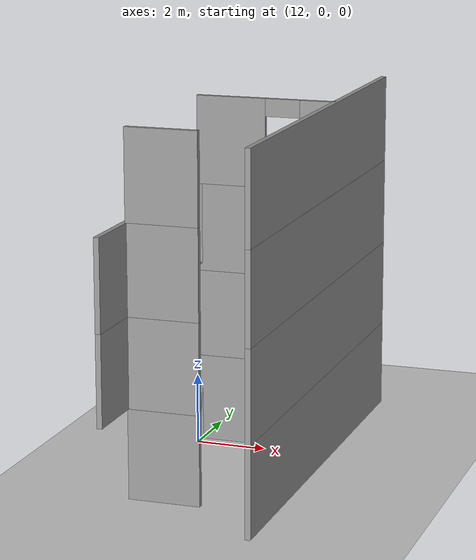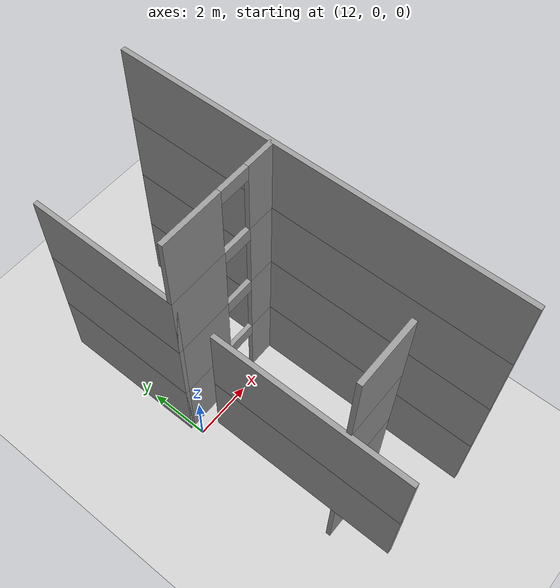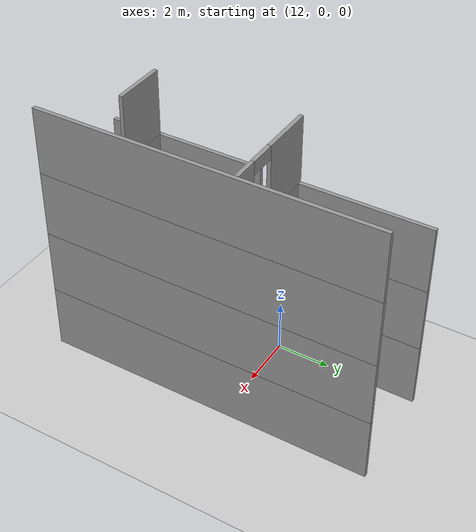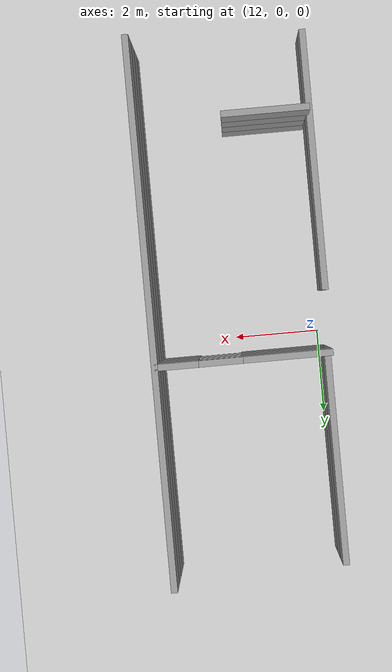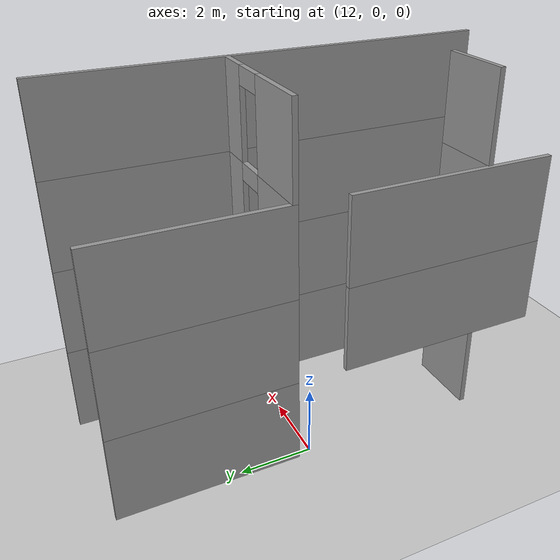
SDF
<sdf version="1.7">
 <world name="default">
  <model name="ground_plane">
   <static>1</static>
   <link name="link">
    <collision name="collision">
     <geometry><plane><normal>0 0 1</normal><size>100 100</size></plane></geometry>
     <surface>
      <contact><collide_bitmask>65535</collide_bitmask></contact>
      <friction><ode><mu>100</mu><mu2>50</mu2></ode></friction>
     </surface>
    </collision>
    <visual name="visual">
     <cast_shadows>0</cast_shadows>
     <geometry><plane><normal>0 0 1</normal><size>100 100</size></plane></geometry>
     <material>
      <script><uri>file://media/materials/scripts/gazebo.material</uri><name>Gazebo/Grey</name></script>
     </material>
    </visual>
   </link>
  </model>
  <model name="floor4plan_transp">
   <link name="Wall_103">
    <pose>15.925 0 7.5 0 -0 1.5708</pose>
    <visual name="Wall_103_Visual">
     <pose>0 0 1.25 0 -0 0</pose>
     <geometry><box><size>12.5 0.15 2.5</size></box></geometry>
     <material>
      <script><uri>file://media/materials/scripts/gazebo.material</uri><name>Gazebo/Grey</name></script>
      <ambient>1 1 1 1</ambient>
      <shader type="pixel"/>
     </material>
     <meta><layer>3</layer></meta>
    </visual>
    <collision name="Wall_103_Collision">
     <pose>0 0 1.25 0 -0 0</pose>
     <geometry><box><size>12.5 0.15 2.5</size></box></geometry>
     <surface>
      <friction>
       <ode><mu>1</mu><mu2>1</mu2><fdir1>0 0 0</fdir1><slip1>0</slip1><slip2>0</slip2></ode>
       <torsional>
        <coefficient>1</coefficient>
        <patch_radius>0</patch_radius>
        <surface_radius>0</surface_radius>
        <use_patch_radius>1</use_patch_radius>
        <ode><slip>0</slip></ode>
       </torsional>
      </friction>
      <bounce><restitution_coefficient>0</restitution_coefficient><threshold>1e+06</threshold></bounce>
      <contact>
       <collide_without_contact>0</collide_without_contact>
       <collide_without_contact_bitmask>1</collide_without_contact_bitmask>
       <collide_bitmask>1</collide_bitmask>
       <ode>
        <soft_cfm>0</soft_cfm>
        <soft_erp>0.2</soft_erp>
        <kp>1e+13</kp>
        <kd>1</kd>
        <max_vel>0.01</max_vel>
        <min_depth>0</min_depth>
       </ode>
       <bullet>
        <split_impulse>1</split_impulse>
        <split_impulse_penetration_threshold>-0.01</split_impulse_penetration_threshold>
        <soft_cfm>0</soft_cfm>
        <soft_erp>0.2</soft_erp>
        <kp>1e+13</kp>
        <kd>1</kd>
       </bullet>
      </contact>
     </surface>
    </collision>
   </link>
   <link name="Wall_106">
    <pose>13.9205 1.21683 7.5 0 -0 0</pose>
    <visual name="Wall_106_Visual_0">
     <pose>-0.992908 0 1.25 0 -0 0</pose>
     <geometry><box><size>2.01418 0.15 2.5</size></box></geometry>
     <material>
      <script><uri>file://media/materials/scripts/gazebo.material</uri><name>Gazebo/Grey</name></script>
      <ambient>1 1 1 1</ambient>
      <shader type="pixel"/>
     </material>
     <meta><layer>3</layer></meta>
    </visual>
    <visual name="Wall_106_Visual_1">
     <pose>1.50709 0 1.25 0 -0 0</pose>
     <geometry><box><size>0.985817 0.15 2.5</size></box></geometry>
     <material>
      <script><uri>file://media/materials/scripts/gazebo.material</uri><name>Gazebo/Grey</name></script>
      <ambient>1 1 1 1</ambient>
      <shader type="pixel"/>
     </material>
     <meta><layer>3</layer></meta>
    </visual>
    <visual name="Wall_106_Visual_2">
     <pose>0.514183 0 2.25 0 -0 0</pose>
     <geometry><box><size>1 0.15 0.5</size></box></geometry>
     <material>
      <script><uri>file://media/materials/scripts/gazebo.material</uri><name>Gazebo/Grey</name></script>
      <ambient>1 1 1 1</ambient>
      <shader type="pixel"/>
     </material>
     <meta><layer>3</layer></meta>
    </visual>
    <collision name="Wall_106_Collision_0">
     <pose>-0.992908 0 1.25 0 -0 0</pose>
     <geometry><box><size>2.01418 0.15 2.5</size></box></geometry>
     <surface>
      <friction>
       <ode><mu>1</mu><mu2>1</mu2><fdir1>0 0 0</fdir1><slip1>0</slip1><slip2>0</slip2></ode>
       <torsional>
        <coefficient>1</coefficient>
        <patch_radius>0</patch_radius>
        <surface_radius>0</surface_radius>
        <use_patch_radius>1</use_patch_radius>
        <ode><slip>0</slip></ode>
       </torsional>
      </friction>
      <bounce><restitution_coefficient>0</restitution_coefficient><threshold>1e+06</threshold></bounce>
      <contact>
       <collide_without_contact>0</collide_without_contact>
       <collide_without_contact_bitmask>1</collide_without_contact_bitmask>
       <collide_bitmask>1</collide_bitmask>
       <ode>
        <soft_cfm>0</soft_cfm>
        <soft_erp>0.2</soft_erp>
        <kp>1e+13</kp>
        <kd>1</kd>
        <max_vel>0.01</max_vel>
        <min_depth>0</min_depth>
       </ode>
       <bullet>
        <split_impulse>1</split_impulse>
        <split_impulse_penetration_threshold>-0.01</split_impulse_penetration_threshold>
        <soft_cfm>0</soft_cfm>
        <soft_erp>0.2</soft_erp>
        <kp>1e+13</kp>
        <kd>1</kd>
       </bullet>
      </contact>
     </surface>
    </collision>
    <collision name="Wall_106_Collision_1">
     <pose>1.50709 0 1.25 0 -0 0</pose>
     <geometry><box><size>0.985817 0.15 2.5</size></box></geometry>
     <surface>
      <friction>
       <ode><mu>1</mu><mu2>1</mu2><fdir1>0 0 0</fdir1><slip1>0</slip1><slip2>0</slip2></ode>
       <torsional>
        <coefficient>1</coefficient>
        <patch_radius>0</patch_radius>
        <surface_radius>0</surface_radius>
        <use_patch_radius>1</use_patch_radius>
        <ode><slip>0</slip></ode>
       </torsional>
      </friction>
      <bounce><restitution_coefficient>0</restitution_coefficient><threshold>1e+06</threshold></bounce>
      <contact>
       <collide_without_contact>0</collide_without_contact>
       <collide_without_contact_bitmask>1</collide_without_contact_bitmask>
       <collide_bitmask>1</collide_bitmask>
       <ode>
        <soft_cfm>0</soft_cfm>
        <soft_erp>0.2</soft_erp>
        <kp>1e+13</kp>
        <kd>1</kd>
        <max_vel>0.01</max_vel>
        <min_depth>0</min_depth>
       </ode>
       <bullet>
        <split_impulse>1</split_impulse>
        <split_impulse_penetration_threshold>-0.01</split_impulse_penetration_threshold>
        <soft_cfm>0</soft_cfm>
        <soft_erp>0.2</soft_erp>
        <kp>1e+13</kp>
        <kd>1</kd>
       </bullet>
      </contact>
     </surface>
    </collision>
    <collision name="Wall_106_Collision_2">
     <pose>0.514183 0 2.25 0 -0 0</pose>
     <geometry><box><size>1 0.15 0.5</size></box></geometry>
     <surface>
      <friction>
       <ode><mu>1</mu><mu2>1</mu2><fdir1>0 0 0</fdir1><slip1>0</slip1><slip2>0</slip2></ode>
       <torsional>
        <coefficient>1</coefficient>
        <patch_radius>0</patch_radius>
        <surface_radius>0</surface_radius>
        <use_patch_radius>1</use_patch_radius>
        <ode><slip>0</slip></ode>
       </torsional>
      </friction>
      <bounce><restitution_coefficient>0</restitution_coefficient><threshold>1e+06</threshold></bounce>
      <contact>
       <collide_without_contact>0</collide_without_contact>
       <collide_without_contact_bitmask>1</collide_without_contact_bitmask>
       <collide_bitmask>1</collide_bitmask>
       <ode>
        <soft_cfm>0</soft_cfm>
        <soft_erp>0.2</soft_erp>
        <kp>1e+13</kp>
        <kd>1</kd>
        <max_vel>0.01</max_vel>
        <min_depth>0</min_depth>
       </ode>
       <bullet>
        <split_impulse>1</split_impulse>
        <split_impulse_penetration_threshold>-0.01</split_impulse_penetration_threshold>
        <soft_cfm>0</soft_cfm>
        <soft_erp>0.2</soft_erp>
        <kp>1e+13</kp>
        <kd>1</kd>
       </bullet>
      </contact>
     </surface>
    </collision>
   </link>
   <link name="Wall_124">
    <pose>12.9541 -4.28826 7.5 0 -0 0</pose>
    <visual name="Wall_124_Visual">
     <pose>0 0 1.25 0 -0 0</pose>
     <geometry><box><size>2 0.15 2.5</size></box></geometry>
     <material>
      <script><uri>file://media/materials/scripts/gazebo.material</uri><name>Gazebo/Grey</name></script>
      <ambient>1 1 1 1</ambient>
      <shader type="pixel"/>
     </material>
     <meta><layer>3</layer></meta>
    </visual>
    <collision name="Wall_124_Collision">
     <pose>0 0 1.25 0 -0 0</pose>
     <geometry><box><size>2 0.15 2.5</size></box></geometry>
     <surface>
      <friction>
       <ode><mu>1</mu><mu2>1</mu2><fdir1>0 0 0</fdir1><slip1>0</slip1><slip2>0</slip2></ode>
       <torsional>
        <coefficient>1</coefficient>
        <patch_radius>0</patch_radius>
        <surface_radius>0</surface_radius>
        <use_patch_radius>1</use_patch_radius>
        <ode><slip>0</slip></ode>
       </torsional>
      </friction>
      <bounce><restitution_coefficient>0</restitution_coefficient><threshold>1e+06</threshold></bounce>
      <contact>
       <collide_without_contact>0</collide_without_contact>
       <collide_without_contact_bitmask>1</collide_without_contact_bitmask>
       <collide_bitmask>1</collide_bitmask>
       <ode>
        <soft_cfm>0</soft_cfm>
        <soft_erp>0.2</soft_erp>
        <kp>1e+13</kp>
        <kd>1</kd>
        <max_vel>0.01</max_vel>
        <min_depth>0</min_depth>
       </ode>
       <bullet>
        <split_impulse>1</split_impulse>
        <split_impulse_penetration_threshold>-0.01</split_impulse_penetration_threshold>
        <soft_cfm>0</soft_cfm>
        <soft_erp>0.2</soft_erp>
        <kp>1e+13</kp>
        <kd>1</kd>
       </bullet>
      </contact>
     </surface>
    </collision>
   </link>
   <link name="Wall_13">
    <pose>13.9205 1.21683 0 0 -0 0</pose>
    <visual name="Wall_13_Visual_0">
     <pose>-0.981344 0 1.25 0 -0 0</pose>
     <geometry><box><size>2.03731 0.15 2.5</size></box></geometry>
     <material>
      <script><uri>file://media/materials/scripts/gazebo.material</uri><name>Gazebo/Grey</name></script>
      <ambient>1 1 1 1</ambient>
      <shader type="pixel"/>
     </material>
     <meta><layer>0</layer></meta>
    </visual>
    <visual name="Wall_13_Visual_1">
     <pose>1.51866 0 1.25 0 -0 0</pose>
     <geometry><box><size>0.962687 0.15 2.5</size></box></geometry>
     <material>
      <script><uri>file://media/materials/scripts/gazebo.material</uri><name>Gazebo/Grey</name></script>
      <ambient>1 1 1 1</ambient>
      <shader type="pixel"/>
     </material>
     <meta><layer>0</layer></meta>
    </visual>
    <visual name="Wall_13_Visual_2">
     <pose>0.537313 0 2.25 0 -0 0</pose>
     <geometry><box><size>1 0.15 0.5</size></box></geometry>
     <material>
      <script><uri>file://media/materials/scripts/gazebo.material</uri><name>Gazebo/Grey</name></script>
      <ambient>1 1 1 1</ambient>
      <shader type="pixel"/>
     </material>
     <meta><layer>0</layer></meta>
    </visual>
    <collision name="Wall_13_Collision_0">
     <pose>-0.981344 0 1.25 0 -0 0</pose>
     <geometry><box><size>2.03731 0.15 2.5</size></box></geometry>
     <surface>
      <friction>
       <ode><mu>1</mu><mu2>1</mu2><fdir1>0 0 0</fdir1><slip1>0</slip1><slip2>0</slip2></ode>
       <torsional>
        <coefficient>1</coefficient>
        <patch_radius>0</patch_radius>
        <surface_radius>0</surface_radius>
        <use_patch_radius>1</use_patch_radius>
        <ode><slip>0</slip></ode>
       </torsional>
      </friction>
      <bounce><restitution_coefficient>0</restitution_coefficient><threshold>1e+06</threshold></bounce>
      <contact>
       <collide_without_contact>0</collide_without_contact>
       <collide_without_contact_bitmask>1</collide_without_contact_bitmask>
       <collide_bitmask>1</collide_bitmask>
       <ode>
        <soft_cfm>0</soft_cfm>
        <soft_erp>0.2</soft_erp>
        <kp>1e+13</kp>
        <kd>1</kd>
        <max_vel>0.01</max_vel>
        <min_depth>0</min_depth>
       </ode>
       <bullet>
        <split_impulse>1</split_impulse>
        <split_impulse_penetration_threshold>-0.01</split_impulse_penetration_threshold>
        <soft_cfm>0</soft_cfm>
        <soft_erp>0.2</soft_erp>
        <kp>1e+13</kp>
        <kd>1</kd>
       </bullet>
      </contact>
     </surface>
    </collision>
    <collision name="Wall_13_Collision_1">
     <pose>1.51866 0 1.25 0 -0 0</pose>
     <geometry><box><size>0.962687 0.15 2.5</size></box></geometry>
     <surface>
      <friction>
       <ode><mu>1</mu><mu2>1</mu2><fdir1>0 0 0</fdir1><slip1>0</slip1><slip2>0</slip2></ode>
       <torsional>
        <coefficient>1</coefficient>
        <patch_radius>0</patch_radius>
        <surface_radius>0</surface_radius>
        <use_patch_radius>1</use_patch_radius>
        <ode><slip>0</slip></ode>
       </torsional>
      </friction>
      <bounce><restitution_coefficient>0</restitution_coefficient><threshold>1e+06</threshold></bounce>
      <contact>
       <collide_without_contact>0</collide_without_contact>
       <collide_without_contact_bitmask>1</collide_without_contact_bitmask>
       <collide_bitmask>1</collide_bitmask>
       <ode>
        <soft_cfm>0</soft_cfm>
        <soft_erp>0.2</soft_erp>
        <kp>1e+13</kp>
        <kd>1</kd>
        <max_vel>0.01</max_vel>
        <min_depth>0</min_depth>
       </ode>
       <bullet>
        <split_impulse>1</split_impulse>
        <split_impulse_penetration_threshold>-0.01</split_impulse_penetration_threshold>
        <soft_cfm>0</soft_cfm>
        <soft_erp>0.2</soft_erp>
        <kp>1e+13</kp>
        <kd>1</kd>
       </bullet>
      </contact>
     </surface>
    </collision>
    <collision name="Wall_13_Collision_2">
     <pose>0.537313 0 2.25 0 -0 0</pose>
     <geometry><box><size>1 0.15 0.5</size></box></geometry>
     <surface>
      <friction>
       <ode><mu>1</mu><mu2>1</mu2><fdir1>0 0 0</fdir1><slip1>0</slip1><slip2>0</slip2></ode>
       <torsional>
        <coefficient>1</coefficient>
        <patch_radius>0</patch_radius>
        <surface_radius>0</surface_radius>
        <use_patch_radius>1</use_patch_radius>
        <ode><slip>0</slip></ode>
       </torsional>
      </friction>
      <bounce><restitution_coefficient>0</restitution_coefficient><threshold>1e+06</threshold></bounce>
      <contact>
       <collide_without_contact>0</collide_without_contact>
       <collide_without_contact_bitmask>1</collide_without_contact_bitmask>
       <collide_bitmask>1</collide_bitmask>
       <ode>
        <soft_cfm>0</soft_cfm>
        <soft_erp>0.2</soft_erp>
        <kp>1e+13</kp>
        <kd>1</kd>
        <max_vel>0.01</max_vel>
        <min_depth>0</min_depth>
       </ode>
       <bullet>
        <split_impulse>1</split_impulse>
        <split_impulse_penetration_threshold>-0.01</split_impulse_penetration_threshold>
        <soft_cfm>0</soft_cfm>
        <soft_erp>0.2</soft_erp>
        <kp>1e+13</kp>
        <kd>1</kd>
       </bullet>
      </contact>
     </surface>
    </collision>
   </link>
   <link name="Wall_27">
    <pose>11.9955 3.64183 0 0 0 -1.5708</pose>
    <visual name="Wall_27_Visual">
     <pose>0 0 1.25 0 -0 0</pose>
     <geometry><box><size>5 0.15 2.5</size></box></geometry>
     <material>
      <script><uri>file://media/materials/scripts/gazebo.material</uri><name>Gazebo/Grey</name></script>
      <ambient>1 1 1 1</ambient>
      <shader type="pixel"/>
     </material>
     <meta><layer>0</layer></meta>
    </visual>
    <collision name="Wall_27_Collision">
     <pose>0 0 1.25 0 -0 0</pose>
     <geometry><box><size>5 0.15 2.5</size></box></geometry>
     <surface>
      <friction>
       <ode><mu>1</mu><mu2>1</mu2><fdir1>0 0 0</fdir1><slip1>0</slip1><slip2>0</slip2></ode>
       <torsional>
        <coefficient>1</coefficient>
        <patch_radius>0</patch_radius>
        <surface_radius>0</surface_radius>
        <use_patch_radius>1</use_patch_radius>
        <ode><slip>0</slip></ode>
       </torsional>
      </friction>
      <bounce><restitution_coefficient>0</restitution_coefficient><threshold>1e+06</threshold></bounce>
      <contact>
       <collide_without_contact>0</collide_without_contact>
       <collide_without_contact_bitmask>1</collide_without_contact_bitmask>
       <collide_bitmask>1</collide_bitmask>
       <ode>
        <soft_cfm>0</soft_cfm>
        <soft_erp>0.2</soft_erp>
        <kp>1e+13</kp>
        <kd>1</kd>
        <max_vel>0.01</max_vel>
        <min_depth>0</min_depth>
       </ode>
       <bullet>
        <split_impulse>1</split_impulse>
        <split_impulse_penetration_threshold>-0.01</split_impulse_penetration_threshold>
        <soft_cfm>0</soft_cfm>
        <soft_erp>0.2</soft_erp>
        <kp>1e+13</kp>
        <kd>1</kd>
       </bullet>
      </contact>
     </surface>
    </collision>
   </link>
   <link name="Wall_4">
    <pose>15.925 0 0 0 -0 1.5708</pose>
    <visual name="Wall_4_Visual">
     <pose>0 0 1.25 0 -0 0</pose>
     <geometry><box><size>12.5 0.15 2.5</size></box></geometry>
     <material>
      <script><uri>file://media/materials/scripts/gazebo.material</uri><name>Gazebo/Grey</name></script>
      <ambient>1 1 1 1</ambient>
      <shader type="pixel"/>
     </material>
     <meta><layer>0</layer></meta>
    </visual>
    <collision name="Wall_4_Collision">
     <pose>0 0 1.25 0 -0 0</pose>
     <geometry><box><size>12.5 0.15 2.5</size></box></geometry>
     <surface>
      <friction>
       <ode><mu>1</mu><mu2>1</mu2><fdir1>0 0 0</fdir1><slip1>0</slip1><slip2>0</slip2></ode>
       <torsional>
        <coefficient>1</coefficient>
        <patch_radius>0</patch_radius>
        <surface_radius>0</surface_radius>
        <use_patch_radius>1</use_patch_radius>
        <ode><slip>0</slip></ode>
       </torsional>
      </friction>
      <bounce><restitution_coefficient>0</restitution_coefficient><threshold>1e+06</threshold></bounce>
      <contact>
       <collide_without_contact>0</collide_without_contact>
       <collide_without_contact_bitmask>1</collide_without_contact_bitmask>
       <collide_bitmask>1</collide_bitmask>
       <ode>
        <soft_cfm>0</soft_cfm>
        <soft_erp>0.2</soft_erp>
        <kp>1e+13</kp>
        <kd>1</kd>
        <max_vel>0.01</max_vel>
        <min_depth>0</min_depth>
       </ode>
       <bullet>
        <split_impulse>1</split_impulse>
        <split_impulse_penetration_threshold>-0.01</split_impulse_penetration_threshold>
        <soft_cfm>0</soft_cfm>
        <soft_erp>0.2</soft_erp>
        <kp>1e+13</kp>
        <kd>1</kd>
       </bullet>
      </contact>
     </surface>
    </collision>
   </link>
   <link name="Wall_48">
    <pose>12.9541 -4.28826 0 0 -0 0</pose>
    <visual name="Wall_48_Visual">
     <pose>0 0 1.25 0 -0 0</pose>
     <geometry><box><size>2 0.15 2.5</size></box></geometry>
     <material>
      <script><uri>file://media/materials/scripts/gazebo.material</uri><name>Gazebo/Grey</name></script>
      <ambient>1 1 1 1</ambient>
      <shader type="pixel"/>
     </material>
     <meta><layer>0</layer></meta>
    </visual>
    <collision name="Wall_48_Collision">
     <pose>0 0 1.25 0 -0 0</pose>
     <geometry><box><size>2 0.15 2.5</size></box></geometry>
     <surface>
      <friction>
       <ode><mu>1</mu><mu2>1</mu2><fdir1>0 0 0</fdir1><slip1>0</slip1><slip2>0</slip2></ode>
       <torsional>
        <coefficient>1</coefficient>
        <patch_radius>0</patch_radius>
        <surface_radius>0</surface_radius>
        <use_patch_radius>1</use_patch_radius>
        <ode><slip>0</slip></ode>
       </torsional>
      </friction>
      <bounce><restitution_coefficient>0</restitution_coefficient><threshold>1e+06</threshold></bounce>
      <contact>
       <collide_without_contact>0</collide_without_contact>
       <collide_without_contact_bitmask>1</collide_without_contact_bitmask>
       <collide_bitmask>1</collide_bitmask>
       <ode>
        <soft_cfm>0</soft_cfm>
        <soft_erp>0.2</soft_erp>
        <kp>1e+13</kp>
        <kd>1</kd>
        <max_vel>0.01</max_vel>
        <min_depth>0</min_depth>
       </ode>
       <bullet>
        <split_impulse>1</split_impulse>
        <split_impulse_penetration_threshold>-0.01</split_impulse_penetration_threshold>
        <soft_cfm>0</soft_cfm>
        <soft_erp>0.2</soft_erp>
        <kp>1e+13</kp>
        <kd>1</kd>
       </bullet>
      </contact>
     </surface>
    </collision>
   </link>
   <link name="Wall_53">
    <pose>15.925 0 2.5 0 -0 1.5708</pose>
    <visual name="Wall_53_Visual">
     <pose>0 0 1.25 0 -0 0</pose>
     <geometry><box><size>12.5 0.15 2.5</size></box></geometry>
     <material>
      <script><uri>file://media/materials/scripts/gazebo.material</uri><name>Gazebo/Grey</name></script>
      <ambient>1 1 1 1</ambient>
      <shader type="pixel"/>
     </material>
     <meta><layer>1</layer></meta>
    </visual>
    <collision name="Wall_53_Collision">
     <pose>0 0 1.25 0 -0 0</pose>
     <geometry><box><size>12.5 0.15 2.5</size></box></geometry>
     <surface>
      <friction>
       <ode><mu>1</mu><mu2>1</mu2><fdir1>0 0 0</fdir1><slip1>0</slip1><slip2>0</slip2></ode>
       <torsional>
        <coefficient>1</coefficient>
        <patch_radius>0</patch_radius>
        <surface_radius>0</surface_radius>
        <use_patch_radius>1</use_patch_radius>
        <ode><slip>0</slip></ode>
       </torsional>
      </friction>
      <bounce><restitution_coefficient>0</restitution_coefficient><threshold>1e+06</threshold></bounce>
      <contact>
       <collide_without_contact>0</collide_without_contact>
       <collide_without_contact_bitmask>1</collide_without_contact_bitmask>
       <collide_bitmask>1</collide_bitmask>
       <ode>
        <soft_cfm>0</soft_cfm>
        <soft_erp>0.2</soft_erp>
        <kp>1e+13</kp>
        <kd>1</kd>
        <max_vel>0.01</max_vel>
        <min_depth>0</min_depth>
       </ode>
       <bullet>
        <split_impulse>1</split_impulse>
        <split_impulse_penetration_threshold>-0.01</split_impulse_penetration_threshold>
        <soft_cfm>0</soft_cfm>
        <soft_erp>0.2</soft_erp>
        <kp>1e+13</kp>
        <kd>1</kd>
       </bullet>
      </contact>
     </surface>
    </collision>
   </link>
   <link name="Wall_56">
    <pose>13.9205 1.21683 2.5 0 -0 0</pose>
    <visual name="Wall_56_Visual_0">
     <pose>-0.981343 0 1.25 0 -0 0</pose>
     <geometry><box><size>2.03731 0.15 2.5</size></box></geometry>
     <material>
      <script><uri>file://media/materials/scripts/gazebo.material</uri><name>Gazebo/Grey</name></script>
      <ambient>1 1 1 1</ambient>
      <shader type="pixel"/>
     </material>
     <meta><layer>1</layer></meta>
    </visual>
    <visual name="Wall_56_Visual_1">
     <pose>1.51866 0 1.25 0 -0 0</pose>
     <geometry><box><size>0.962687 0.15 2.5</size></box></geometry>
     <material>
      <script><uri>file://media/materials/scripts/gazebo.material</uri><name>Gazebo/Grey</name></script>
      <ambient>1 1 1 1</ambient>
      <shader type="pixel"/>
     </material>
     <meta><layer>1</layer></meta>
    </visual>
    <visual name="Wall_56_Visual_2">
     <pose>0.537313 0 2.25 0 -0 0</pose>
     <geometry><box><size>1 0.15 0.5</size></box></geometry>
     <material>
      <script><uri>file://media/materials/scripts/gazebo.material</uri><name>Gazebo/Grey</name></script>
      <ambient>1 1 1 1</ambient>
      <shader type="pixel"/>
     </material>
     <meta><layer>1</layer></meta>
    </visual>
    <collision name="Wall_56_Collision_0">
     <pose>-0.981343 0 1.25 0 -0 0</pose>
     <geometry><box><size>2.03731 0.15 2.5</size></box></geometry>
     <surface>
      <friction>
       <ode><mu>1</mu><mu2>1</mu2><fdir1>0 0 0</fdir1><slip1>0</slip1><slip2>0</slip2></ode>
       <torsional>
        <coefficient>1</coefficient>
        <patch_radius>0</patch_radius>
        <surface_radius>0</surface_radius>
        <use_patch_radius>1</use_patch_radius>
        <ode><slip>0</slip></ode>
       </torsional>
      </friction>
      <bounce><restitution_coefficient>0</restitution_coefficient><threshold>1e+06</threshold></bounce>
      <contact>
       <collide_without_contact>0</collide_without_contact>
       <collide_without_contact_bitmask>1</collide_without_contact_bitmask>
       <collide_bitmask>1</collide_bitmask>
       <ode>
        <soft_cfm>0</soft_cfm>
        <soft_erp>0.2</soft_erp>
        <kp>1e+13</kp>
        <kd>1</kd>
        <max_vel>0.01</max_vel>
        <min_depth>0</min_depth>
       </ode>
       <bullet>
        <split_impulse>1</split_impulse>
        <split_impulse_penetration_threshold>-0.01</split_impulse_penetration_threshold>
        <soft_cfm>0</soft_cfm>
        <soft_erp>0.2</soft_erp>
        <kp>1e+13</kp>
        <kd>1</kd>
       </bullet>
      </contact>
     </surface>
    </collision>
    <collision name="Wall_56_Collision_1">
     <pose>1.51866 0 1.25 0 -0 0</pose>
     <geometry><box><size>0.962687 0.15 2.5</size></box></geometry>
     <surface>
      <friction>
       <ode><mu>1</mu><mu2>1</mu2><fdir1>0 0 0</fdir1><slip1>0</slip1><slip2>0</slip2></ode>
       <torsional>
        <coefficient>1</coefficient>
        <patch_radius>0</patch_radius>
        <surface_radius>0</surface_radius>
        <use_patch_radius>1</use_patch_radius>
        <ode><slip>0</slip></ode>
       </torsional>
      </friction>
      <bounce><restitution_coefficient>0</restitution_coefficient><threshold>1e+06</threshold></bounce>
      <contact>
       <collide_without_contact>0</collide_without_contact>
       <collide_without_contact_bitmask>1</collide_without_contact_bitmask>
       <collide_bitmask>1</collide_bitmask>
       <ode>
        <soft_cfm>0</soft_cfm>
        <soft_erp>0.2</soft_erp>
        <kp>1e+13</kp>
        <kd>1</kd>
        <max_vel>0.01</max_vel>
        <min_depth>0</min_depth>
       </ode>
       <bullet>
        <split_impulse>1</split_impulse>
        <split_impulse_penetration_threshold>-0.01</split_impulse_penetration_threshold>
        <soft_cfm>0</soft_cfm>
        <soft_erp>0.2</soft_erp>
        <kp>1e+13</kp>
        <kd>1</kd>
       </bullet>
      </contact>
     </surface>
    </collision>
    <collision name="Wall_56_Collision_2">
     <pose>0.537313 0 2.25 0 -0 0</pose>
     <geometry><box><size>1 0.15 0.5</size></box></geometry>
     <surface>
      <friction>
       <ode><mu>1</mu><mu2>1</mu2><fdir1>0 0 0</fdir1><slip1>0</slip1><slip2>0</slip2></ode>
       <torsional>
        <coefficient>1</coefficient>
        <patch_radius>0</patch_radius>
        <surface_radius>0</surface_radius>
        <use_patch_radius>1</use_patch_radius>
        <ode><slip>0</slip></ode>
       </torsional>
      </friction>
      <bounce><restitution_coefficient>0</restitution_coefficient><threshold>1e+06</threshold></bounce>
      <contact>
       <collide_without_contact>0</collide_without_contact>
       <collide_without_contact_bitmask>1</collide_without_contact_bitmask>
       <collide_bitmask>1</collide_bitmask>
       <ode>
        <soft_cfm>0</soft_cfm>
        <soft_erp>0.2</soft_erp>
        <kp>1e+13</kp>
        <kd>1</kd>
        <max_vel>0.01</max_vel>
        <min_depth>0</min_depth>
       </ode>
       <bullet>
        <split_impulse>1</split_impulse>
        <split_impulse_penetration_threshold>-0.01</split_impulse_penetration_threshold>
        <soft_cfm>0</soft_cfm>
        <soft_erp>0.2</soft_erp>
        <kp>1e+13</kp>
        <kd>1</kd>
       </bullet>
      </contact>
     </surface>
    </collision>
   </link>
   <link name="Wall_63">
    <pose>11.9955 3.64183 2.5 0 0 -1.5708</pose>
    <visual name="Wall_63_Visual">
     <pose>0 0 1.25 0 -0 0</pose>
     <geometry><box><size>5 0.15 2.5</size></box></geometry>
     <material>
      <script><uri>file://media/materials/scripts/gazebo.material</uri><name>Gazebo/Grey</name></script>
      <ambient>1 1 1 1</ambient>
      <shader type="pixel"/>
     </material>
     <meta><layer>1</layer></meta>
    </visual>
    <collision name="Wall_63_Collision">
     <pose>0 0 1.25 0 -0 0</pose>
     <geometry><box><size>5 0.15 2.5</size></box></geometry>
     <surface>
      <friction>
       <ode><mu>1</mu><mu2>1</mu2><fdir1>0 0 0</fdir1><slip1>0</slip1><slip2>0</slip2></ode>
       <torsional>
        <coefficient>1</coefficient>
        <patch_radius>0</patch_radius>
        <surface_radius>0</surface_radius>
        <use_patch_radius>1</use_patch_radius>
        <ode><slip>0</slip></ode>
       </torsional>
      </friction>
      <bounce><restitution_coefficient>0</restitution_coefficient><threshold>1e+06</threshold></bounce>
      <contact>
       <collide_without_contact>0</collide_without_contact>
       <collide_without_contact_bitmask>1</collide_without_contact_bitmask>
       <collide_bitmask>1</collide_bitmask>
       <ode>
        <soft_cfm>0</soft_cfm>
        <soft_erp>0.2</soft_erp>
        <kp>1e+13</kp>
        <kd>1</kd>
        <max_vel>0.01</max_vel>
        <min_depth>0</min_depth>
       </ode>
       <bullet>
        <split_impulse>1</split_impulse>
        <split_impulse_penetration_threshold>-0.01</split_impulse_penetration_threshold>
        <soft_cfm>0</soft_cfm>
        <soft_erp>0.2</soft_erp>
        <kp>1e+13</kp>
        <kd>1</kd>
       </bullet>
      </contact>
     </surface>
    </collision>
   </link>
   <link name="Wall_67">
    <pose>11.9189 -3.18853 2.5 0 0 -1.5708</pose>
    <visual name="Wall_67_Visual">
     <pose>0 0 1.25 0 -0 0</pose>
     <geometry><box><size>6 0.15 2.5</size></box></geometry>
     <material>
      <script><uri>file://media/materials/scripts/gazebo.material</uri><name>Gazebo/Grey</name></script>
      <ambient>1 1 1 1</ambient>
      <shader type="pixel"/>
     </material>
     <meta><layer>1</layer></meta>
    </visual>
    <collision name="Wall_67_Collision">
     <pose>0 0 1.25 0 -0 0</pose>
     <geometry><box><size>6 0.15 2.5</size></box></geometry>
     <surface>
      <friction>
       <ode><mu>1</mu><mu2>1</mu2><fdir1>0 0 0</fdir1><slip1>0</slip1><slip2>0</slip2></ode>
       <torsional>
        <coefficient>1</coefficient>
        <patch_radius>0</patch_radius>
        <surface_radius>0</surface_radius>
        <use_patch_radius>1</use_patch_radius>
        <ode><slip>0</slip></ode>
       </torsional>
      </friction>
      <bounce><restitution_coefficient>0</restitution_coefficient><threshold>1e+06</threshold></bounce>
      <contact>
       <collide_without_contact>0</collide_without_contact>
       <collide_without_contact_bitmask>1</collide_without_contact_bitmask>
       <collide_bitmask>1</collide_bitmask>
       <ode>
        <soft_cfm>0</soft_cfm>
        <soft_erp>0.2</soft_erp>
        <kp>1e+13</kp>
        <kd>1</kd>
        <max_vel>0.01</max_vel>
        <min_depth>0</min_depth>
       </ode>
       <bullet>
        <split_impulse>1</split_impulse>
        <split_impulse_penetration_threshold>-0.01</split_impulse_penetration_threshold>
        <soft_cfm>0</soft_cfm>
        <soft_erp>0.2</soft_erp>
        <kp>1e+13</kp>
        <kd>1</kd>
       </bullet>
      </contact>
     </surface>
    </collision>
   </link>
   <link name="Wall_74">
    <pose>12.9541 -4.28826 2.5 0 -0 0</pose>
    <visual name="Wall_74_Visual">
     <pose>0 0 1.25 0 -0 0</pose>
     <geometry><box><size>2 0.15 2.5</size></box></geometry>
     <material>
      <script><uri>file://media/materials/scripts/gazebo.material</uri><name>Gazebo/Grey</name></script>
      <ambient>1 1 1 1</ambient>
      <shader type="pixel"/>
     </material>
     <meta><layer>1</layer></meta>
    </visual>
    <collision name="Wall_74_Collision">
     <pose>0 0 1.25 0 -0 0</pose>
     <geometry><box><size>2 0.15 2.5</size></box></geometry>
     <surface>
      <friction>
       <ode><mu>1</mu><mu2>1</mu2><fdir1>0 0 0</fdir1><slip1>0</slip1><slip2>0</slip2></ode>
       <torsional>
        <coefficient>1</coefficient>
        <patch_radius>0</patch_radius>
        <surface_radius>0</surface_radius>
        <use_patch_radius>1</use_patch_radius>
        <ode><slip>0</slip></ode>
       </torsional>
      </friction>
      <bounce><restitution_coefficient>0</restitution_coefficient><threshold>1e+06</threshold></bounce>
      <contact>
       <collide_without_contact>0</collide_without_contact>
       <collide_without_contact_bitmask>1</collide_without_contact_bitmask>
       <collide_bitmask>1</collide_bitmask>
       <ode>
        <soft_cfm>0</soft_cfm>
        <soft_erp>0.2</soft_erp>
        <kp>1e+13</kp>
        <kd>1</kd>
        <max_vel>0.01</max_vel>
        <min_depth>0</min_depth>
       </ode>
       <bullet>
        <split_impulse>1</split_impulse>
        <split_impulse_penetration_threshold>-0.01</split_impulse_penetration_threshold>
        <soft_cfm>0</soft_cfm>
        <soft_erp>0.2</soft_erp>
        <kp>1e+13</kp>
        <kd>1</kd>
       </bullet>
      </contact>
     </surface>
    </collision>
   </link>
   <link name="Wall_78">
    <pose>15.925 0 5 0 -0 1.5708</pose>
    <visual name="Wall_78_Visual">
     <pose>0 0 1.25 0 -0 0</pose>
     <geometry><box><size>12.5 0.15 2.5</size></box></geometry>
     <material>
      <script><uri>file://media/materials/scripts/gazebo.material</uri><name>Gazebo/Grey</name></script>
      <ambient>1 1 1 1</ambient>
      <shader type="pixel"/>
     </material>
     <meta><layer>2</layer></meta>
    </visual>
    <collision name="Wall_78_Collision">
     <pose>0 0 1.25 0 -0 0</pose>
     <geometry><box><size>12.5 0.15 2.5</size></box></geometry>
     <surface>
      <friction>
       <ode><mu>1</mu><mu2>1</mu2><fdir1>0 0 0</fdir1><slip1>0</slip1><slip2>0</slip2></ode>
       <torsional>
        <coefficient>1</coefficient>
        <patch_radius>0</patch_radius>
        <surface_radius>0</surface_radius>
        <use_patch_radius>1</use_patch_radius>
        <ode><slip>0</slip></ode>
       </torsional>
      </friction>
      <bounce><restitution_coefficient>0</restitution_coefficient><threshold>1e+06</threshold></bounce>
      <contact>
       <collide_without_contact>0</collide_without_contact>
       <collide_without_contact_bitmask>1</collide_without_contact_bitmask>
       <collide_bitmask>1</collide_bitmask>
       <ode>
        <soft_cfm>0</soft_cfm>
        <soft_erp>0.2</soft_erp>
        <kp>1e+13</kp>
        <kd>1</kd>
        <max_vel>0.01</max_vel>
        <min_depth>0</min_depth>
       </ode>
       <bullet>
        <split_impulse>1</split_impulse>
        <split_impulse_penetration_threshold>-0.01</split_impulse_penetration_threshold>
        <soft_cfm>0</soft_cfm>
        <soft_erp>0.2</soft_erp>
        <kp>1e+13</kp>
        <kd>1</kd>
       </bullet>
      </contact>
     </surface>
    </collision>
   </link>
   <link name="Wall_81">
    <pose>13.9205 1.21683 5 0 -0 0</pose>
    <visual name="Wall_81_Visual_0">
     <pose>-0.981343 0 1.25 0 -0 0</pose>
     <geometry><box><size>2.03731 0.15 2.5</size></box></geometry>
     <material>
      <script><uri>file://media/materials/scripts/gazebo.material</uri><name>Gazebo/Grey</name></script>
      <ambient>1 1 1 1</ambient>
      <shader type="pixel"/>
     </material>
     <meta><layer>2</layer></meta>
    </visual>
    <visual name="Wall_81_Visual_1">
     <pose>1.51866 0 1.25 0 -0 0</pose>
     <geometry><box><size>0.962687 0.15 2.5</size></box></geometry>
     <material>
      <script><uri>file://media/materials/scripts/gazebo.material</uri><name>Gazebo/Grey</name></script>
      <ambient>1 1 1 1</ambient>
      <shader type="pixel"/>
     </material>
     <meta><layer>2</layer></meta>
    </visual>
    <visual name="Wall_81_Visual_2">
     <pose>0.537313 0 2.25 0 -0 0</pose>
     <geometry><box><size>1 0.15 0.5</size></box></geometry>
     <material>
      <script><uri>file://media/materials/scripts/gazebo.material</uri><name>Gazebo/Grey</name></script>
      <ambient>1 1 1 1</ambient>
      <shader type="pixel"/>
     </material>
     <meta><layer>2</layer></meta>
    </visual>
    <collision name="Wall_81_Collision_0">
     <pose>-0.981343 0 1.25 0 -0 0</pose>
     <geometry><box><size>2.03731 0.15 2.5</size></box></geometry>
     <surface>
      <friction>
       <ode><mu>1</mu><mu2>1</mu2><fdir1>0 0 0</fdir1><slip1>0</slip1><slip2>0</slip2></ode>
       <torsional>
        <coefficient>1</coefficient>
        <patch_radius>0</patch_radius>
        <surface_radius>0</surface_radius>
        <use_patch_radius>1</use_patch_radius>
        <ode><slip>0</slip></ode>
       </torsional>
      </friction>
      <bounce><restitution_coefficient>0</restitution_coefficient><threshold>1e+06</threshold></bounce>
      <contact>
       <collide_without_contact>0</collide_without_contact>
       <collide_without_contact_bitmask>1</collide_without_contact_bitmask>
       <collide_bitmask>1</collide_bitmask>
       <ode>
        <soft_cfm>0</soft_cfm>
        <soft_erp>0.2</soft_erp>
        <kp>1e+13</kp>
        <kd>1</kd>
        <max_vel>0.01</max_vel>
        <min_depth>0</min_depth>
       </ode>
       <bullet>
        <split_impulse>1</split_impulse>
        <split_impulse_penetration_threshold>-0.01</split_impulse_penetration_threshold>
        <soft_cfm>0</soft_cfm>
        <soft_erp>0.2</soft_erp>
        <kp>1e+13</kp>
        <kd>1</kd>
       </bullet>
      </contact>
     </surface>
    </collision>
    <collision name="Wall_81_Collision_1">
     <pose>1.51866 0 1.25 0 -0 0</pose>
     <geometry><box><size>0.962687 0.15 2.5</size></box></geometry>
     <surface>
      <friction>
       <ode><mu>1</mu><mu2>1</mu2><fdir1>0 0 0</fdir1><slip1>0</slip1><slip2>0</slip2></ode>
       <torsional>
        <coefficient>1</coefficient>
        <patch_radius>0</patch_radius>
        <surface_radius>0</surface_radius>
        <use_patch_radius>1</use_patch_radius>
        <ode><slip>0</slip></ode>
       </torsional>
      </friction>
      <bounce><restitution_coefficient>0</restitution_coefficient><threshold>1e+06</threshold></bounce>
      <contact>
       <collide_without_contact>0</collide_without_contact>
       <collide_without_contact_bitmask>1</collide_without_contact_bitmask>
       <collide_bitmask>1</collide_bitmask>
       <ode>
        <soft_cfm>0</soft_cfm>
        <soft_erp>0.2</soft_erp>
        <kp>1e+13</kp>
        <kd>1</kd>
        <max_vel>0.01</max_vel>
        <min_depth>0</min_depth>
       </ode>
       <bullet>
        <split_impulse>1</split_impulse>
        <split_impulse_penetration_threshold>-0.01</split_impulse_penetration_threshold>
        <soft_cfm>0</soft_cfm>
        <soft_erp>0.2</soft_erp>
        <kp>1e+13</kp>
        <kd>1</kd>
       </bullet>
      </contact>
     </surface>
    </collision>
    <collision name="Wall_81_Collision_2">
     <pose>0.537313 0 2.25 0 -0 0</pose>
     <geometry><box><size>1 0.15 0.5</size></box></geometry>
     <surface>
      <friction>
       <ode><mu>1</mu><mu2>1</mu2><fdir1>0 0 0</fdir1><slip1>0</slip1><slip2>0</slip2></ode>
       <torsional>
        <coefficient>1</coefficient>
        <patch_radius>0</patch_radius>
        <surface_radius>0</surface_radius>
        <use_patch_radius>1</use_patch_radius>
        <ode><slip>0</slip></ode>
       </torsional>
      </friction>
      <bounce><restitution_coefficient>0</restitution_coefficient><threshold>1e+06</threshold></bounce>
      <contact>
       <collide_without_contact>0</collide_without_contact>
       <collide_without_contact_bitmask>1</collide_without_contact_bitmask>
       <collide_bitmask>1</collide_bitmask>
       <ode>
        <soft_cfm>0</soft_cfm>
        <soft_erp>0.2</soft_erp>
        <kp>1e+13</kp>
        <kd>1</kd>
        <max_vel>0.01</max_vel>
        <min_depth>0</min_depth>
       </ode>
       <bullet>
        <split_impulse>1</split_impulse>
        <split_impulse_penetration_threshold>-0.01</split_impulse_penetration_threshold>
        <soft_cfm>0</soft_cfm>
        <soft_erp>0.2</soft_erp>
        <kp>1e+13</kp>
        <kd>1</kd>
       </bullet>
      </contact>
     </surface>
    </collision>
   </link>
   <link name="Wall_88">
    <pose>11.9955 3.64183 5 0 0 -1.5708</pose>
    <visual name="Wall_88_Visual">
     <pose>0 0 1.25 0 -0 0</pose>
     <geometry><box><size>5 0.15 2.5</size></box></geometry>
     <material>
      <script><uri>file://media/materials/scripts/gazebo.material</uri><name>Gazebo/Grey</name></script>
      <ambient>1 1 1 1</ambient>
      <shader type="pixel"/>
     </material>
     <meta><layer>2</layer></meta>
    </visual>
    <collision name="Wall_88_Collision">
     <pose>0 0 1.25 0 -0 0</pose>
     <geometry><box><size>5 0.15 2.5</size></box></geometry>
     <surface>
      <friction>
       <ode><mu>1</mu><mu2>1</mu2><fdir1>0 0 0</fdir1><slip1>0</slip1><slip2>0</slip2></ode>
       <torsional>
        <coefficient>1</coefficient>
        <patch_radius>0</patch_radius>
        <surface_radius>0</surface_radius>
        <use_patch_radius>1</use_patch_radius>
        <ode><slip>0</slip></ode>
       </torsional>
      </friction>
      <bounce><restitution_coefficient>0</restitution_coefficient><threshold>1e+06</threshold></bounce>
      <contact>
       <collide_without_contact>0</collide_without_contact>
       <collide_without_contact_bitmask>1</collide_without_contact_bitmask>
       <collide_bitmask>1</collide_bitmask>
       <ode>
        <soft_cfm>0</soft_cfm>
        <soft_erp>0.2</soft_erp>
        <kp>1e+13</kp>
        <kd>1</kd>
        <max_vel>0.01</max_vel>
        <min_depth>0</min_depth>
       </ode>
       <bullet>
        <split_impulse>1</split_impulse>
        <split_impulse_penetration_threshold>-0.01</split_impulse_penetration_threshold>
        <soft_cfm>0</soft_cfm>
        <soft_erp>0.2</soft_erp>
        <kp>1e+13</kp>
        <kd>1</kd>
       </bullet>
      </contact>
     </surface>
    </collision>
   </link>
   <link name="Wall_92">
    <pose>11.9189 -3.18853 5 0 0 -1.5708</pose>
    <visual name="Wall_92_Visual">
     <pose>0 0 1.25 0 -0 0</pose>
     <geometry><box><size>6 0.15 2.5</size></box></geometry>
     <material>
      <script><uri>file://media/materials/scripts/gazebo.material</uri><name>Gazebo/Grey</name></script>
      <ambient>1 1 1 1</ambient>
      <shader type="pixel"/>
     </material>
     <meta><layer>2</layer></meta>
    </visual>
    <collision name="Wall_92_Collision">
     <pose>0 0 1.25 0 -0 0</pose>
     <geometry><box><size>6 0.15 2.5</size></box></geometry>
     <surface>
      <friction>
       <ode><mu>1</mu><mu2>1</mu2><fdir1>0 0 0</fdir1><slip1>0</slip1><slip2>0</slip2></ode>
       <torsional>
        <coefficient>1</coefficient>
        <patch_radius>0</patch_radius>
        <surface_radius>0</surface_radius>
        <use_patch_radius>1</use_patch_radius>
        <ode><slip>0</slip></ode>
       </torsional>
      </friction>
      <bounce><restitution_coefficient>0</restitution_coefficient><threshold>1e+06</threshold></bounce>
      <contact>
       <collide_without_contact>0</collide_without_contact>
       <collide_without_contact_bitmask>1</collide_without_contact_bitmask>
       <collide_bitmask>1</collide_bitmask>
       <ode>
        <soft_cfm>0</soft_cfm>
        <soft_erp>0.2</soft_erp>
        <kp>1e+13</kp>
        <kd>1</kd>
        <max_vel>0.01</max_vel>
        <min_depth>0</min_depth>
       </ode>
       <bullet>
        <split_impulse>1</split_impulse>
        <split_impulse_penetration_threshold>-0.01</split_impulse_penetration_threshold>
        <soft_cfm>0</soft_cfm>
        <soft_erp>0.2</soft_erp>
        <kp>1e+13</kp>
        <kd>1</kd>
       </bullet>
      </contact>
     </surface>
    </collision>
   </link>
   <link name="Wall_99">
    <pose>12.9541 -4.28826 5 0 -0 0</pose>
    <visual name="Wall_99_Visual">
     <pose>0 0 1.25 0 -0 0</pose>
     <geometry><box><size>2 0.15 2.5</size></box></geometry>
     <material>
      <script><uri>file://media/materials/scripts/gazebo.material</uri><name>Gazebo/Grey</name></script>
      <ambient>1 1 1 1</ambient>
      <shader type="pixel"/>
     </material>
     <meta><layer>2</layer></meta>
    </visual>
    <collision name="Wall_99_Collision">
     <pose>0 0 1.25 0 -0 0</pose>
     <geometry><box><size>2 0.15 2.5</size></box></geometry>
     <surface>
      <friction>
       <ode><mu>1</mu><mu2>1</mu2><fdir1>0 0 0</fdir1><slip1>0</slip1><slip2>0</slip2></ode>
       <torsional>
        <coefficient>1</coefficient>
        <patch_radius>0</patch_radius>
        <surface_radius>0</surface_radius>
        <use_patch_radius>1</use_patch_radius>
        <ode><slip>0</slip></ode>
       </torsional>
      </friction>
      <bounce><restitution_coefficient>0</restitution_coefficient><threshold>1e+06</threshold></bounce>
      <contact>
       <collide_without_contact>0</collide_without_contact>
       <collide_without_contact_bitmask>1</collide_without_contact_bitmask>
       <collide_bitmask>1</collide_bitmask>
       <ode>
        <soft_cfm>0</soft_cfm>
        <soft_erp>0.2</soft_erp>
        <kp>1e+13</kp>
        <kd>1</kd>
        <max_vel>0.01</max_vel>
        <min_depth>0</min_depth>
       </ode>
       <bullet>
        <split_impulse>1</split_impulse>
        <split_impulse_penetration_threshold>-0.01</split_impulse_penetration_threshold>
        <soft_cfm>0</soft_cfm>
        <soft_erp>0.2</soft_erp>
        <kp>1e+13</kp>
        <kd>1</kd>
       </bullet>
      </contact>
     </surface>
    </collision>
   </link>
   <static>1</static>
   <pose>-0.046496 -0.776599 0 0 -0 0</pose>
  </model>
 </world>
</sdf>
